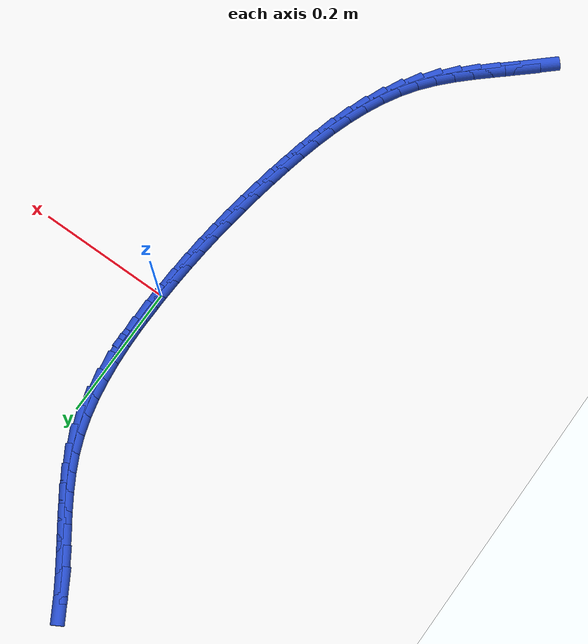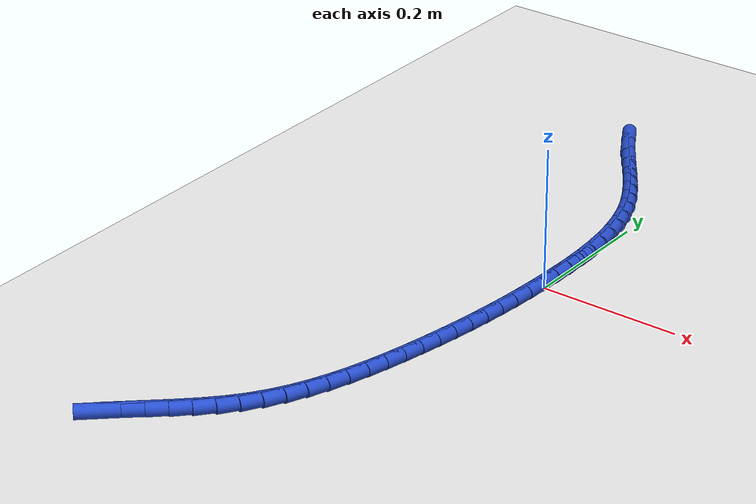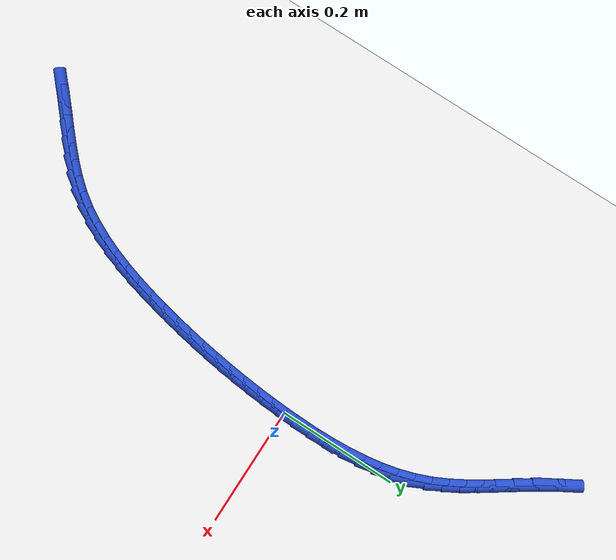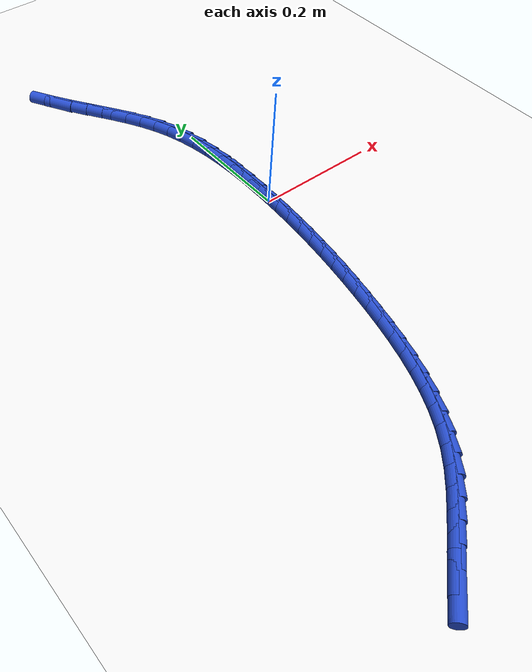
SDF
<sdf version="1.6">
 <world name="default">
  <model name="ground_plane">
   <static>1</static>
   <link name="link">
    <collision name="collision">
     <geometry><plane><normal>0 0 1</normal><size>100 100</size></plane></geometry>
     <surface><friction><ode><mu>100</mu><mu2>50</mu2></ode></friction></surface>
    </collision>
    <visual name="visual">
     <cast_shadows>0</cast_shadows>
     <geometry><plane><normal>0 0 1</normal><size>100 100</size></plane></geometry>
     <material>
      <script><uri>file://media/materials/scripts/gazebo.material</uri><name>Gazebo/WhiteGlow</name></script>
     </material>
    </visual>
   </link>
  </model>
  <model name="line">
   <link name="link_0">
    <pose>-6.396792817664476e-18 4.163336342344337e-17 0.01 0 1.57 1.54245428637409</pose>
    <collision name="collision">
     <geometry><cylinder><radius>0.01</radius><length>0.08</length></cylinder></geometry>
    </collision>
    <visual name="visual">
     <material>
      <script><name>Gazebo/Blue</name><uri>file://media/materials/scripts/gazebo.material</uri></script>
     </material>
     <geometry><cylinder><radius>0.01</radius><length>0.08</length></cylinder></geometry>
    </visual>
   </link>
   <link name="link_1">
    <pose>0.0008248467116915636 0.029095500149906025 0.01 0 1.57 1.5677693399325823</pose>
    <collision name="collision">
     <geometry><cylinder><radius>0.01</radius><length>0.08</length></cylinder></geometry>
    </collision>
    <visual name="visual">
     <material>
      <script><name>Gazebo/Blue</name><uri>file://media/materials/scripts/gazebo.material</uri></script>
     </material>
     <geometry><cylinder><radius>0.01</radius><length>0.08</length></cylinder></geometry>
    </visual>
   </link>
   <link name="link_2">
    <pose>0.0009134119182850745 0.05835394761747079 0.01 0 1.57 -1.5422264359774394</pose>
    <collision name="collision">
     <geometry><cylinder><radius>0.01</radius><length>0.08</length></cylinder></geometry>
    </collision>
    <visual name="visual">
     <material>
      <script><name>Gazebo/Blue</name><uri>file://media/materials/scripts/gazebo.material</uri></script>
     </material>
     <geometry><cylinder><radius>0.01</radius><length>0.08</length></cylinder></geometry>
    </visual>
   </link>
   <link name="link_3">
    <pose>7.768115417044726e-05 0.08759813940753491 0.01 0 1.57 -1.5038446356973172</pose>
    <collision name="collision">
     <geometry><cylinder><radius>0.01</radius><length>0.08</length></cylinder></geometry>
    </collision>
    <visual name="visual">
     <material>
      <script><name>Gazebo/Blue</name><uri>file://media/materials/scripts/gazebo.material</uri></script>
     </material>
     <geometry><cylinder><radius>0.01</radius><length>0.08</length></cylinder></geometry>
    </visual>
   </link>
   <link name="link_4">
    <pose>-0.0018703600462624012 0.11665087252493883 0.01 0 1.57 -1.4580304136091649</pose>
    <collision name="collision">
     <geometry><cylinder><radius>0.01</radius><length>0.08</length></cylinder></geometry>
    </collision>
    <visual name="visual">
     <material>
      <script><name>Gazebo/Blue</name><uri>file://media/materials/scripts/gazebo.material</uri></script>
     </material>
     <geometry><cylinder><radius>0.01</radius><length>0.08</length></cylinder></geometry>
    </visual>
   </link>
   <link name="link_5">
    <pose>-0.005118726148623548 0.14533494397452312 0.01 0 1.57 -1.4040227581456983</pose>
    <collision name="collision">
     <geometry><cylinder><radius>0.01</radius><length>0.08</length></cylinder></geometry>
    </collision>
    <visual name="visual">
     <material>
      <script><name>Gazebo/Blue</name><uri>file://media/materials/scripts/gazebo.material</uri></script>
     </material>
     <geometry><cylinder><radius>0.01</radius><length>0.08</length></cylinder></geometry>
    </visual>
   </link>
   <link name="link_6">
    <pose>-0.009855431618523081 0.17347315076112838 0.01 0 1.57 -1.341004287895014</pose>
    <collision name="collision">
     <geometry><cylinder><radius>0.01</radius><length>0.08</length></cylinder></geometry>
    </collision>
    <visual name="visual">
     <material>
      <script><name>Gazebo/Blue</name><uri>file://media/materials/scripts/gazebo.material</uri></script>
     </material>
     <geometry><cylinder><radius>0.01</radius><length>0.08</length></cylinder></geometry>
    </visual>
   </link>
   <link name="link_7">
    <pose>-0.016268490921571073 0.20088828988959495 0.01 0 1.57 -1.268202466706276</pose>
    <collision name="collision">
     <geometry><cylinder><radius>0.01</radius><length>0.08</length></cylinder></geometry>
    </collision>
    <visual name="visual">
     <material>
      <script><name>Gazebo/Blue</name><uri>file://media/materials/scripts/gazebo.material</uri></script>
     </material>
     <geometry><cylinder><radius>0.01</radius><length>0.08</length></cylinder></geometry>
    </visual>
   </link>
   <link name="link_8">
    <pose>-0.024545918523377612 0.22740315836476355 0.01 0 1.57 -1.1857203393625144</pose>
    <collision name="collision">
     <geometry><cylinder><radius>0.01</radius><length>0.08</length></cylinder></geometry>
    </collision>
    <visual name="visual">
     <material>
      <script><name>Gazebo/Blue</name><uri>file://media/materials/scripts/gazebo.material</uri></script>
     </material>
     <geometry><cylinder><radius>0.01</radius><length>0.08</length></cylinder></geometry>
    </visual>
   </link>
   <link name="link_9">
    <pose>-0.034860855251699574 0.25285262720387897 0.01 0 1.57 -1.1068173142942233</pose>
    <collision name="collision">
     <geometry><cylinder><radius>0.01</radius><length>0.08</length></cylinder></geometry>
    </collision>
    <visual name="visual">
     <material>
      <script><name>Gazebo/Blue</name><uri>file://media/materials/scripts/gazebo.material</uri></script>
     </material>
     <geometry><cylinder><radius>0.01</radius><length>0.08</length></cylinder></geometry>
    </visual>
   </link>
   <link name="link_10">
    <pose>-0.047097666821547056 0.27730598716250304 0.01 0 1.57 -1.0448218522410508</pose>
    <collision name="collision">
     <geometry><cylinder><radius>0.01</radius><length>0.08</length></cylinder></geometry>
    </collision>
    <visual name="visual">
     <material>
      <script><name>Gazebo/Blue</name><uri>file://media/materials/scripts/gazebo.material</uri></script>
     </material>
     <geometry><cylinder><radius>0.01</radius><length>0.08</length></cylinder></geometry>
    </visual>
   </link>
   <link name="link_11">
    <pose>-0.060878784411462404 0.3010451602888011 0.01 0 1.57 -1.0009656076182503</pose>
    <collision name="collision">
     <geometry><cylinder><radius>0.01</radius><length>0.08</length></cylinder></geometry>
    </collision>
    <visual name="visual">
     <material>
      <script><name>Gazebo/Blue</name><uri>file://media/materials/scripts/gazebo.material</uri></script>
     </material>
     <geometry><cylinder><radius>0.01</radius><length>0.08</length></cylinder></geometry>
    </visual>
   </link>
   <link name="link_12">
    <pose>-0.07581714969714255 0.3243597719498032 0.01 0 1.57 -0.9752033165678898</pose>
    <collision name="collision">
     <geometry><cylinder><radius>0.01</radius><length>0.08</length></cylinder></geometry>
    </collision>
    <visual name="visual">
     <material>
      <script><name>Gazebo/Blue</name><uri>file://media/materials/scripts/gazebo.material</uri></script>
     </material>
     <geometry><cylinder><radius>0.01</radius><length>0.08</length></cylinder></geometry>
    </visual>
   </link>
   <link name="link_13">
    <pose>-0.09152570435428442 0.34753944751253957 0.01 0 1.57 -0.9670754464203306</pose>
    <collision name="collision">
     <geometry><cylinder><radius>0.01</radius><length>0.08</length></cylinder></geometry>
    </collision>
    <visual name="visual">
     <material>
      <script><name>Gazebo/Blue</name><uri>file://media/materials/scripts/gazebo.material</uri></script>
     </material>
     <geometry><cylinder><radius>0.01</radius><length>0.08</length></cylinder></geometry>
    </visual>
   </link>
   <link name="link_14">
    <pose>-0.10761739005858495 0.3708738123440406 0.01 0 1.57 -0.9759741425558733</pose>
    <collision name="collision">
     <geometry><cylinder><radius>0.01</radius><length>0.08</length></cylinder></geometry>
    </collision>
    <visual name="visual">
     <material>
      <script><name>Gazebo/Blue</name><uri>file://media/materials/scripts/gazebo.material</uri></script>
     </material>
     <geometry><cylinder><radius>0.01</radius><length>0.08</length></cylinder></geometry>
    </visual>
   </link>
   <link name="link_15">
    <pose>-0.12370514848574109 0.39465249181133627 0.01 0 1.57 -1.0012314942445295</pose>
    <collision name="collision">
     <geometry><cylinder><radius>0.01</radius><length>0.08</length></cylinder></geometry>
    </collision>
    <visual name="visual">
     <material>
      <script><name>Gazebo/Blue</name><uri>file://media/materials/scripts/gazebo.material</uri></script>
     </material>
     <geometry><cylinder><radius>0.01</radius><length>0.08</length></cylinder></geometry>
    </visual>
   </link>
   <link name="link_16">
    <pose>-0.13940192131144968 0.41916511128145656 0.01 0 1.57 -1.0420611925751466</pose>
    <collision name="collision">
     <geometry><cylinder><radius>0.01</radius><length>0.08</length></cylinder></geometry>
    </collision>
    <visual name="visual">
     <material>
      <script><name>Gazebo/Blue</name><uri>file://media/materials/scripts/gazebo.material</uri></script>
     </material>
     <geometry><cylinder><radius>0.01</radius><length>0.08</length></cylinder></geometry>
    </visual>
   </link>
   <link name="link_237">
    <pose>-0.23676643289092458 -0.5848500855799816 0.01 0 1.57 0.7387024148107684</pose>
    <collision name="collision">
     <geometry><cylinder><radius>0.01</radius><length>0.08</length></cylinder></geometry>
    </collision>
    <visual name="visual">
     <material>
      <script><name>Gazebo/Blue</name><uri>file://media/materials/scripts/gazebo.material</uri></script>
     </material>
     <geometry><cylinder><radius>0.01</radius><length>0.08</length></cylinder></geometry>
    </visual>
   </link>
   <link name="link_238">
    <pose>-0.2155487667756459 -0.5655268828391655 0.01 0 1.57 0.7259947567752996</pose>
    <collision name="collision">
     <geometry><cylinder><radius>0.01</radius><length>0.08</length></cylinder></geometry>
    </collision>
    <visual name="visual">
     <material>
      <script><name>Gazebo/Blue</name><uri>file://media/materials/scripts/gazebo.material</uri></script>
     </material>
     <geometry><cylinder><radius>0.01</radius><length>0.08</length></cylinder></geometry>
    </visual>
   </link>
   <link name="link_239">
    <pose>-0.1941789761100782 -0.5465562721499094 0.01 0 1.57 0.7335069854139291</pose>
    <collision name="collision">
     <geometry><cylinder><radius>0.01</radius><length>0.08</length></cylinder></geometry>
    </collision>
    <visual name="visual">
     <material>
      <script><name>Gazebo/Blue</name><uri>file://media/materials/scripts/gazebo.material</uri></script>
     </material>
     <geometry><cylinder><radius>0.01</radius><length>0.08</length></cylinder></geometry>
    </visual>
   </link>
   <link name="link_240">
    <pose>-0.17308763956004086 -0.5275476399149384 0.01 0 1.57 0.7616696552350167</pose>
    <collision name="collision">
     <geometry><cylinder><radius>0.01</radius><length>0.08</length></cylinder></geometry>
    </collision>
    <visual name="visual">
     <material>
      <script><name>Gazebo/Blue</name><uri>file://media/materials/scripts/gazebo.material</uri></script>
     </material>
     <geometry><cylinder><radius>0.01</radius><length>0.08</length></cylinder></geometry>
    </visual>
   </link>
   <link name="link_241">
    <pose>-0.15270533579135345 -0.5081103725369779 0.01 0 1.57 0.8110594688203706</pose>
    <collision name="collision">
     <geometry><cylinder><radius>0.01</radius><length>0.08</length></cylinder></geometry>
    </collision>
    <visual name="visual">
     <material>
      <script><name>Gazebo/Blue</name><uri>file://media/materials/scripts/gazebo.material</uri></script>
     </material>
     <geometry><cylinder><radius>0.01</radius><length>0.08</length></cylinder></geometry>
    </visual>
   </link>
   <link name="link_242">
    <pose>-0.13346264346983533 -0.48785385641875323 0.01 0 1.57 0.8820299558374494</pose>
    <collision name="collision">
     <geometry><cylinder><radius>0.01</radius><length>0.08</length></cylinder></geometry>
    </collision>
    <visual name="visual">
     <material>
      <script><name>Gazebo/Blue</name><uri>file://media/materials/scripts/gazebo.material</uri></script>
     </material>
     <geometry><cylinder><radius>0.01</radius><length>0.08</length></cylinder></geometry>
    </visual>
   </link>
   <link name="link_243">
    <pose>-0.11579014126130593 -0.46638747796298985 0.01 0 1.57 0.9700307128173061</pose>
    <collision name="collision">
     <geometry><cylinder><radius>0.01</radius><length>0.08</length></cylinder></geometry>
    </collision>
    <visual name="visual">
     <material>
      <script><name>Gazebo/Blue</name><uri>file://media/materials/scripts/gazebo.material</uri></script>
     </material>
     <geometry><cylinder><radius>0.01</radius><length>0.08</length></cylinder></geometry>
    </visual>
   </link>
   <link name="link_244">
    <pose>-0.10003822403143298 -0.4434007486151496 0.01 0 1.57 1.0537989079902217</pose>
    <collision name="collision">
     <geometry><cylinder><radius>0.01</radius><length>0.08</length></cylinder></geometry>
    </collision>
    <visual name="visual">
     <material>
      <script><name>Gazebo/Blue</name><uri>file://media/materials/scripts/gazebo.material</uri></script>
     </material>
     <geometry><cylinder><radius>0.01</radius><length>0.08</length></cylinder></geometry>
    </visual>
   </link>
   <link name="link_245">
    <pose>-0.08615562016172261 -0.4189845519700336 0.01 0 1.57 1.1268348169799267</pose>
    <collision name="collision">
     <geometry><cylinder><radius>0.01</radius><length>0.08</length></cylinder></geometry>
    </collision>
    <visual name="visual">
     <material>
      <script><name>Gazebo/Blue</name><uri>file://media/materials/scripts/gazebo.material</uri></script>
     </material>
     <geometry><cylinder><radius>0.01</radius><length>0.08</length></cylinder></geometry>
    </visual>
   </link>
   <link name="link_246">
    <pose>-0.07396554891388807 -0.3933551887711497 0.01 0 1.57 1.1895168069573125</pose>
    <collision name="collision">
     <geometry><cylinder><radius>0.01</radius><length>0.08</length></cylinder></geometry>
    </collision>
    <visual name="visual">
     <material>
      <script><name>Gazebo/Blue</name><uri>file://media/materials/scripts/gazebo.material</uri></script>
     </material>
     <geometry><cylinder><radius>0.01</radius><length>0.08</length></cylinder></geometry>
    </visual>
   </link>
   <link name="link_247">
    <pose>-0.06329118724880206 -0.36672900203184566 0.01 0 1.57 1.242495104547734</pose>
    <collision name="collision">
     <geometry><cylinder><radius>0.01</radius><length>0.08</length></cylinder></geometry>
    </collision>
    <visual name="visual">
     <material>
      <script><name>Gazebo/Blue</name><uri>file://media/materials/scripts/gazebo.material</uri></script>
     </material>
     <geometry><cylinder><radius>0.01</radius><length>0.08</length></cylinder></geometry>
    </visual>
   </link>
   <link name="link_248">
    <pose>-0.05395571212733767 -0.3393223347654696 0.01 0 1.57 1.286499487755854</pose>
    <collision name="collision">
     <geometry><cylinder><radius>0.01</radius><length>0.08</length></cylinder></geometry>
    </collision>
    <visual name="visual">
     <material>
      <script><name>Gazebo/Blue</name><uri>file://media/materials/scripts/gazebo.material</uri></script>
     </material>
     <geometry><cylinder><radius>0.01</radius><length>0.08</length></cylinder></geometry>
    </visual>
   </link>
   <link name="link_249">
    <pose>-0.045782300510368024 -0.3113515299853699 0.01 0 1.57 1.3222141920395845</pose>
    <collision name="collision">
     <geometry><cylinder><radius>0.01</radius><length>0.08</length></cylinder></geometry>
    </collision>
    <visual name="visual">
     <material>
      <script><name>Gazebo/Blue</name><uri>file://media/materials/scripts/gazebo.material</uri></script>
     </material>
     <geometry><cylinder><radius>0.01</radius><length>0.08</length></cylinder></geometry>
    </visual>
   </link>
   <link name="link_250">
    <pose>-0.03859412935876624 -0.28303293070489505 0.01 0 1.57 1.3502015544193766</pose>
    <collision name="collision">
     <geometry><cylinder><radius>0.01</radius><length>0.08</length></cylinder></geometry>
    </collision>
    <visual name="visual">
     <material>
      <script><name>Gazebo/Blue</name><uri>file://media/materials/scripts/gazebo.material</uri></script>
     </material>
     <geometry><cylinder><radius>0.01</radius><length>0.08</length></cylinder></geometry>
    </visual>
   </link>
   <link name="link_251">
    <pose>-0.0322143756334054 -0.2545828799373932 0.01 0 1.57 1.3709866591950837</pose>
    <collision name="collision">
     <geometry><cylinder><radius>0.01</radius><length>0.08</length></cylinder></geometry>
    </collision>
    <visual name="visual">
     <material>
      <script><name>Gazebo/Blue</name><uri>file://media/materials/scripts/gazebo.material</uri></script>
     </material>
     <geometry><cylinder><radius>0.01</radius><length>0.08</length></cylinder></geometry>
    </visual>
   </link>
   <link name="link_252">
    <pose>-0.026469156923963483 -0.22621309524482597 0.01 0 1.57 1.3883656457405444</pose>
    <collision name="collision">
     <geometry><cylinder><radius>0.01</radius><length>0.08</length></cylinder></geometry>
    </collision>
    <visual name="visual">
     <material>
      <script><name>Gazebo/Blue</name><uri>file://media/materials/scripts/gazebo.material</uri></script>
     </material>
     <geometry><cylinder><radius>0.01</radius><length>0.08</length></cylinder></geometry>
    </visual>
   </link>
   <link name="link_253">
    <pose>-0.021265759692241985 -0.1980076199069059 0.01 0 1.57 1.4062771472657685</pose>
    <collision name="collision">
     <geometry><cylinder><radius>0.01</radius><length>0.08</length></cylinder></geometry>
    </collision>
    <visual name="visual">
     <material>
      <script><name>Gazebo/Blue</name><uri>file://media/materials/scripts/gazebo.material</uri></script>
     </material>
     <geometry><cylinder><radius>0.01</radius><length>0.08</length></cylinder></geometry>
    </visual>
   </link>
   <link name="link_254">
    <pose>-0.01660095669121572 -0.16990974006703985 0.01 0 1.57 1.424811903915006</pose>
    <collision name="collision">
     <geometry><cylinder><radius>0.01</radius><length>0.08</length></cylinder></geometry>
    </collision>
    <visual name="visual">
     <material>
      <script><name>Gazebo/Blue</name><uri>file://media/materials/scripts/gazebo.material</uri></script>
     </material>
     <geometry><cylinder><radius>0.01</radius><length>0.08</length></cylinder></geometry>
    </visual>
   </link>
   <link name="link_255">
    <pose>-0.012476129750712226 -0.14185549203796038 0.01 0 1.57 1.443841757885935</pose>
    <collision name="collision">
     <geometry><cylinder><radius>0.01</radius><length>0.08</length></cylinder></geometry>
    </collision>
    <visual name="visual">
     <material>
      <script><name>Gazebo/Blue</name><uri>file://media/materials/scripts/gazebo.material</uri></script>
     </material>
     <geometry><cylinder><radius>0.01</radius><length>0.08</length></cylinder></geometry>
    </visual>
   </link>
   <link name="link_256">
    <pose>-0.008892660700559036 -0.11378091213240003 0.01 0 1.57 1.4632283835054554</pose>
    <collision name="collision">
     <geometry><cylinder><radius>0.01</radius><length>0.08</length></cylinder></geometry>
    </collision>
    <visual name="visual">
     <material>
      <script><name>Gazebo/Blue</name><uri>file://media/materials/scripts/gazebo.material</uri></script>
     </material>
     <geometry><cylinder><radius>0.01</radius><length>0.08</length></cylinder></geometry>
    </visual>
   </link>
   <link name="link_257">
    <pose>-0.005851931370583685 -0.08562203666309126 0.01 0 1.57 1.4828268318263544</pose>
    <collision name="collision">
     <geometry><cylinder><radius>0.01</radius><length>0.08</length></cylinder></geometry>
    </collision>
    <visual name="visual">
     <material>
      <script><name>Gazebo/Blue</name><uri>file://media/materials/scripts/gazebo.material</uri></script>
     </material>
     <geometry><cylinder><radius>0.01</radius><length>0.08</length></cylinder></geometry>
    </visual>
   </link>
   <link name="link_258">
    <pose>-0.0033553235906137076 -0.057314901942766644 0.01 0 1.57 1.5024894255597523</pose>
    <collision name="collision">
     <geometry><cylinder><radius>0.01</radius><length>0.08</length></cylinder></geometry>
    </collision>
    <visual name="visual">
     <material>
      <script><name>Gazebo/Blue</name><uri>file://media/materials/scripts/gazebo.material</uri></script>
     </material>
     <geometry><cylinder><radius>0.01</radius><length>0.08</length></cylinder></geometry>
    </visual>
   </link>
   <link name="link_259">
    <pose>-0.0014042191904766353 -0.028795544284158713 0.01 0 1.57 1.5220697715512477</pose>
    <collision name="collision">
     <geometry><cylinder><radius>0.01</radius><length>0.08</length></cylinder></geometry>
    </collision>
    <visual name="visual">
     <material>
      <script><name>Gazebo/Blue</name><uri>file://media/materials/scripts/gazebo.material</uri></script>
     </material>
     <geometry><cylinder><radius>0.01</radius><length>0.08</length></cylinder></geometry>
    </visual>
   </link>
   <link name="link_260">
    <pose>-3.0357660829594124e-18 5.551115123125783e-17 0.01 0 1.57 1.541426646746311</pose>
    <collision name="collision">
     <geometry><cylinder><radius>0.01</radius><length>0.08</length></cylinder></geometry>
    </collision>
    <visual name="visual">
     <material>
      <script><name>Gazebo/Blue</name><uri>file://media/materials/scripts/gazebo.material</uri></script>
     </material>
     <geometry><cylinder><radius>0.01</radius><length>0.08</length></cylinder></geometry>
    </visual>
   </link>
   <link name="link_261">
    <pose>0.0008559521509886556 0.029135694596977058 0.01 0 1.57 1.5604275289234284</pose>
    <collision name="collision">
     <geometry><cylinder><radius>0.01</radius><length>0.08</length></cylinder></geometry>
    </collision>
    <visual name="visual">
     <material>
      <script><name>Gazebo/Blue</name><uri>file://media/materials/scripts/gazebo.material</uri></script>
     </material>
     <geometry><cylinder><radius>0.01</radius><length>0.08</length></cylinder></geometry>
    </visual>
   </link>
   <link name="link_262">
    <pose>0.0011622554326618075 0.05867550319403982 0.01 0 1.57 1.5509907282744857</pose>
    <collision name="collision">
     <geometry><cylinder><radius>0.01</radius><length>0.08</length></cylinder></geometry>
    </collision>
    <visual name="visual">
     <material>
      <script><name>Gazebo/Blue</name><uri>file://media/materials/scripts/gazebo.material</uri></script>
     </material>
     <geometry><cylinder><radius>0.01</radius><length>0.08</length></cylinder></geometry>
    </visual>
   </link>
  </model>
 </world>
</sdf>
